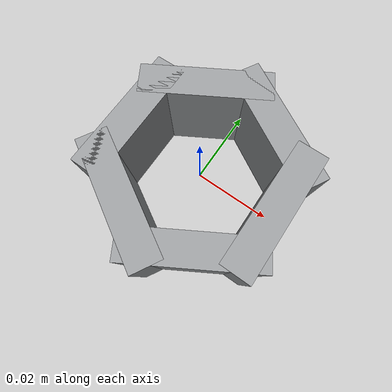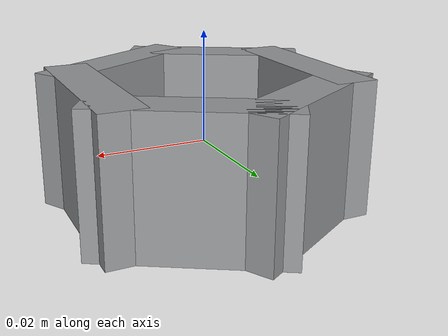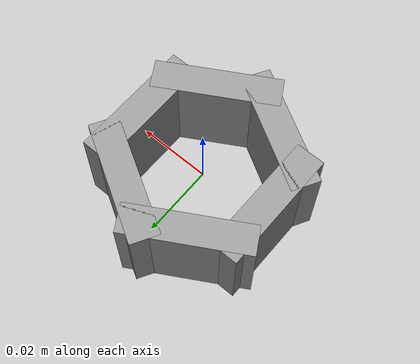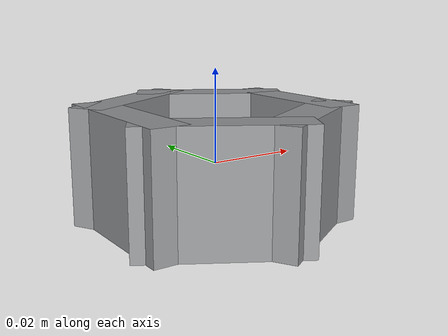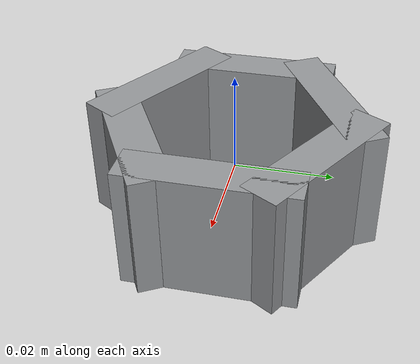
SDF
<?xml version="1.0"?>
<sdf version="1.8">
  <model name="sensoragent_part_hex_nut">
    <link name="part">
      <inertial>
        <mass>0.18</mass>
        <inertia>
          <ixx>0.0000564</ixx>
          <iyy>0.0000564</iyy>
          <izz>0.0000940</izz>
        </inertia>
      </inertial>

      <collision name="side_0_collision">
        <pose>0.0205 0 0 0 0 1.570796</pose>
        <geometry><box><size>0.034 0.008 0.025</size></box></geometry>
      </collision>
      <collision name="side_1_collision">
        <pose>0.01025 0.01775 0 0 0 2.617994</pose>
        <geometry><box><size>0.034 0.008 0.025</size></box></geometry>
      </collision>
      <collision name="side_2_collision">
        <pose>-0.01025 0.01775 0 0 0 3.665191</pose>
        <geometry><box><size>0.034 0.008 0.025</size></box></geometry>
      </collision>
      <collision name="side_3_collision">
        <pose>-0.0205 0 0 0 0 4.712389</pose>
        <geometry><box><size>0.034 0.008 0.025</size></box></geometry>
      </collision>
      <collision name="side_4_collision">
        <pose>-0.01025 -0.01775 0 0 0 5.759587</pose>
        <geometry><box><size>0.034 0.008 0.025</size></box></geometry>
      </collision>
      <collision name="side_5_collision">
        <pose>0.01025 -0.01775 0 0 0 0.523599</pose>
        <geometry><box><size>0.034 0.008 0.025</size></box></geometry>
      </collision>

      <visual name="side_0_visual">
        <pose>0.0205 0 0 0 0 1.570796</pose>
        <geometry><box><size>0.034 0.008 0.025</size></box></geometry>
        <material><ambient>0.42 0.43 0.44 1</ambient><diffuse>0.58 0.59 0.60 1</diffuse><specular>0.35 0.35 0.35 1</specular></material>
      </visual>
      <visual name="side_1_visual">
        <pose>0.01025 0.01775 0 0 0 2.617994</pose>
        <geometry><box><size>0.034 0.008 0.025</size></box></geometry>
        <material><ambient>0.42 0.43 0.44 1</ambient><diffuse>0.58 0.59 0.60 1</diffuse><specular>0.35 0.35 0.35 1</specular></material>
      </visual>
      <visual name="side_2_visual">
        <pose>-0.01025 0.01775 0 0 0 3.665191</pose>
        <geometry><box><size>0.034 0.008 0.025</size></box></geometry>
        <material><ambient>0.42 0.43 0.44 1</ambient><diffuse>0.58 0.59 0.60 1</diffuse><specular>0.35 0.35 0.35 1</specular></material>
      </visual>
      <visual name="side_3_visual">
        <pose>-0.0205 0 0 0 0 4.712389</pose>
        <geometry><box><size>0.034 0.008 0.025</size></box></geometry>
        <material><ambient>0.42 0.43 0.44 1</ambient><diffuse>0.58 0.59 0.60 1</diffuse><specular>0.35 0.35 0.35 1</specular></material>
      </visual>
      <visual name="side_4_visual">
        <pose>-0.01025 -0.01775 0 0 0 5.759587</pose>
        <geometry><box><size>0.034 0.008 0.025</size></box></geometry>
        <material><ambient>0.42 0.43 0.44 1</ambient><diffuse>0.58 0.59 0.60 1</diffuse><specular>0.35 0.35 0.35 1</specular></material>
      </visual>
      <visual name="side_5_visual">
        <pose>0.01025 -0.01775 0 0 0 0.523599</pose>
        <geometry><box><size>0.034 0.008 0.025</size></box></geometry>
        <material><ambient>0.42 0.43 0.44 1</ambient><diffuse>0.58 0.59 0.60 1</diffuse><specular>0.35 0.35 0.35 1</specular></material>
      </visual>
    </link>
  </model>
</sdf>
